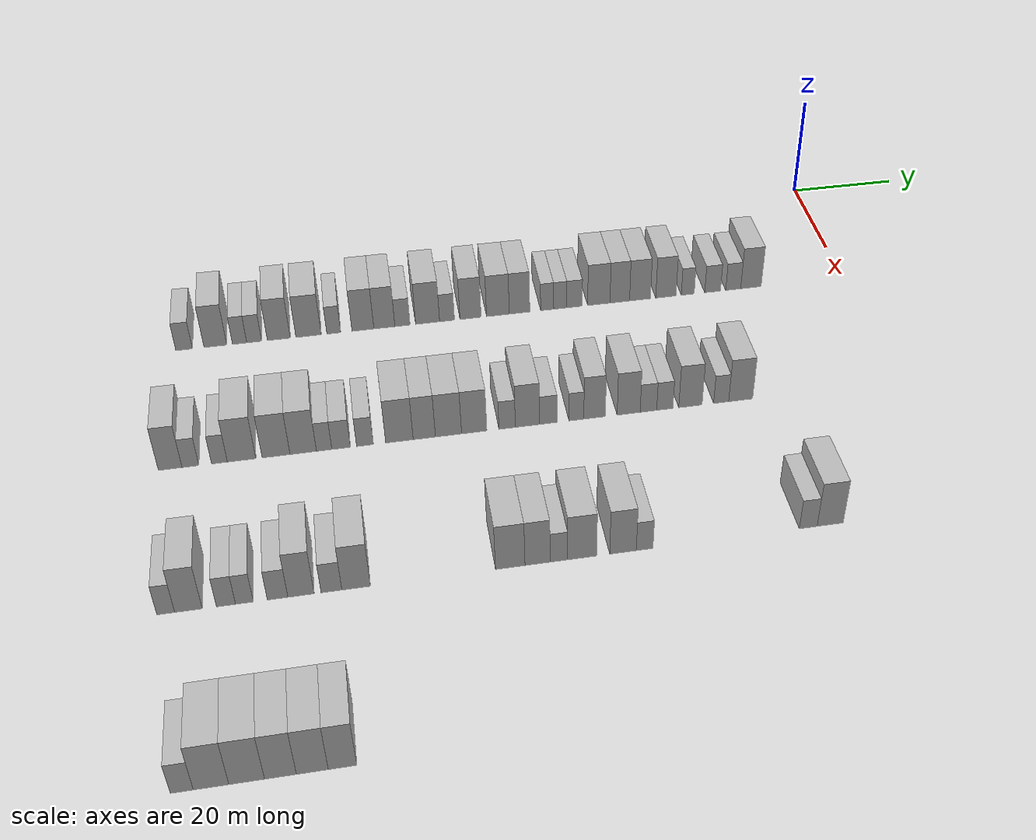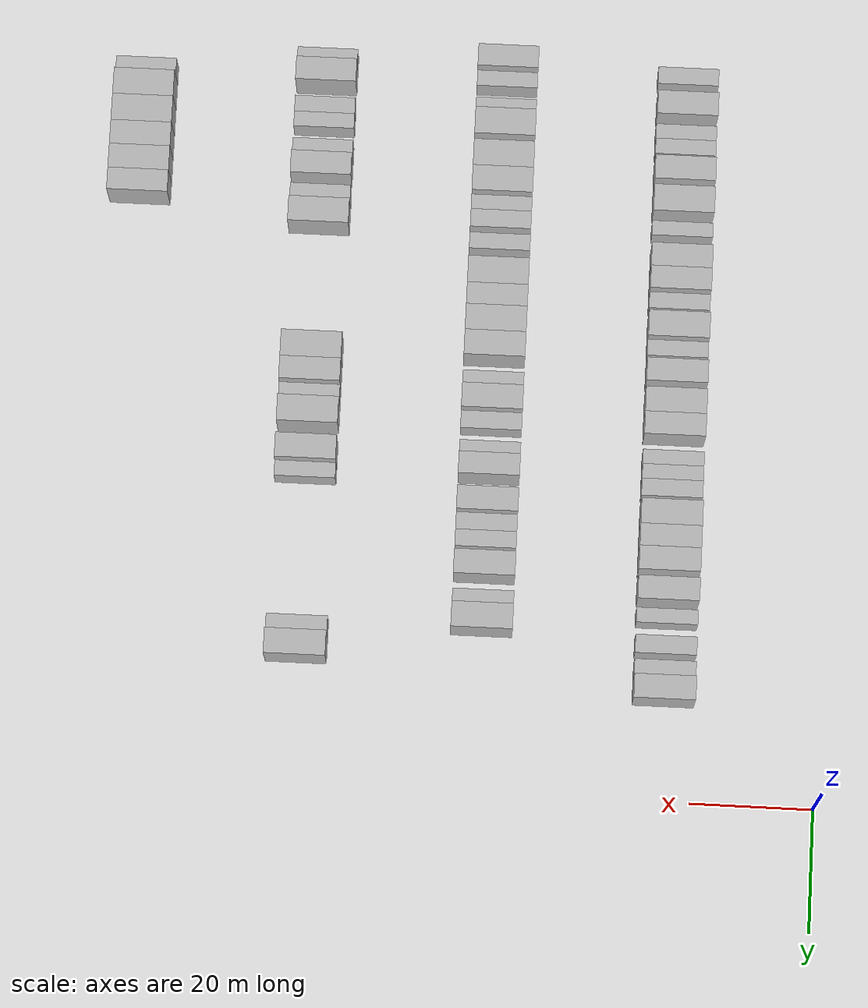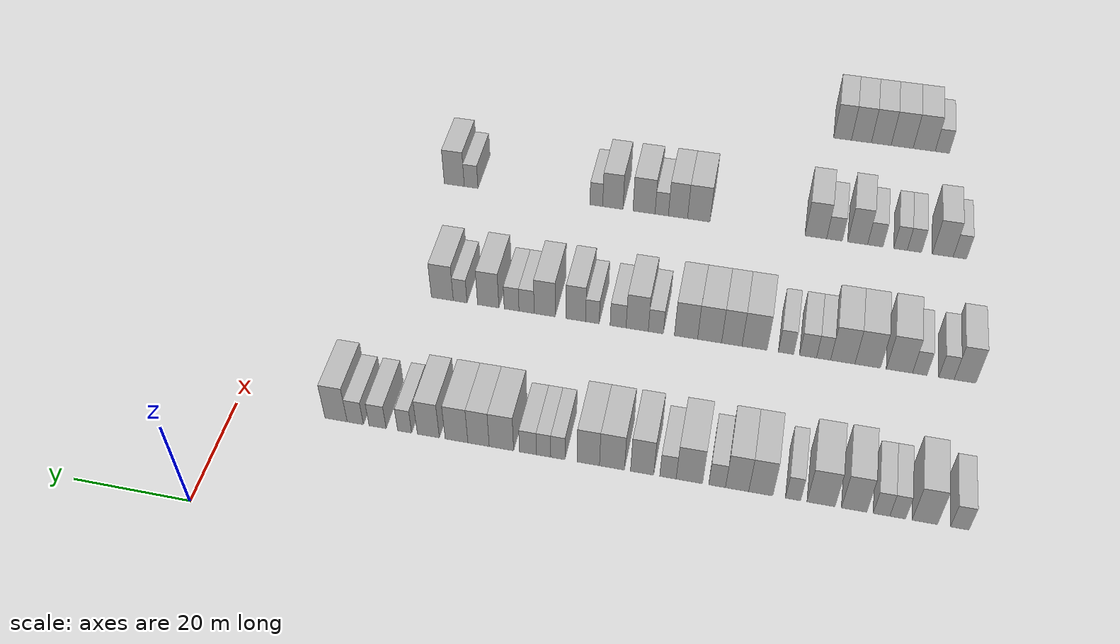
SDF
<sdf version="1.6">
 <world name="default">
  <model name="building_81">
   <static>1</static>
   <pose>25.0000 -120.6225 0 0.000000 0.000000 0.000000</pose>
   <link name="link">
    <pose>0 0 3.00 0 0 0</pose>
    <collision name="collision"><geometry><box><size>10.0000 2.8562 6.0000</size></box></geometry></collision>
    <visual name="visual">
     <cast_shadows>0</cast_shadows>
     <geometry><box><size>10.0000 2.8562 6.0000</size></box></geometry>
     <material>
      <script>
       <uri>model://HANNAS_wall/materials/scripts</uri>
       <uri>model://HANNAS_wall/materials/textures</uri>
       <name>vrc/HANNAS_wall</name>
      </script>
     </material>
    </visual>
   </link>
  </model>
  <model name="building_82">
   <static>1</static>
   <pose>25.0000 -115.2270 0 0.000000 0.000000 0.000000</pose>
   <link name="link">
    <pose>0 0 4.50 0 0 0</pose>
    <collision name="collision"><geometry><box><size>10.0000 3.9348 9.0000</size></box></geometry></collision>
    <visual name="visual">
     <cast_shadows>0</cast_shadows>
     <geometry><box><size>10.0000 3.9348 9.0000</size></box></geometry>
     <material>
      <script>
       <uri>model://HANNAS_wall/materials/scripts</uri>
       <uri>model://HANNAS_wall/materials/textures</uri>
       <name>vrc/HANNAS_wall</name>
      </script>
     </material>
    </visual>
   </link>
  </model>
  <model name="building_83">
   <static>1</static>
   <pose>25.0000 -111.0257 0 0.000000 0.000000 0.000000</pose>
   <link name="link">
    <pose>0 0 3.00 0 0 0</pose>
    <collision name="collision"><geometry><box><size>10.0000 2.4680 6.0000</size></box></geometry></collision>
    <visual name="visual">
     <cast_shadows>0</cast_shadows>
     <geometry><box><size>10.0000 2.4680 6.0000</size></box></geometry>
     <material>
      <script>
       <uri>model://HANNAS_wall/materials/scripts</uri>
       <uri>model://HANNAS_wall/materials/textures</uri>
       <name>vrc/HANNAS_wall</name>
      </script>
     </material>
    </visual>
   </link>
  </model>
  <model name="building_84">
   <static>1</static>
   <pose>25.0000 -108.4898 0 0.000000 0.000000 0.000000</pose>
   <link name="link">
    <pose>0 0 3.00 0 0 0</pose>
    <collision name="collision"><geometry><box><size>10.0000 2.6037 6.0000</size></box></geometry></collision>
    <visual name="visual">
     <cast_shadows>0</cast_shadows>
     <geometry><box><size>10.0000 2.6037 6.0000</size></box></geometry>
     <material>
      <script>
       <uri>model://HANNAS_wall/materials/scripts</uri>
       <uri>model://HANNAS_wall/materials/textures</uri>
       <name>vrc/HANNAS_wall</name>
      </script>
     </material>
    </visual>
   </link>
  </model>
  <model name="building_85">
   <static>1</static>
   <pose>25.0000 -104.1916 0 0.000000 0.000000 0.000000</pose>
   <link name="link">
    <pose>0 0 4.50 0 0 0</pose>
    <collision name="collision"><geometry><box><size>10.0000 3.9929 9.0000</size></box></geometry></collision>
    <visual name="visual">
     <cast_shadows>0</cast_shadows>
     <geometry><box><size>10.0000 3.9929 9.0000</size></box></geometry>
     <material>
      <script>
       <uri>model://HANNAS_wall/materials/scripts</uri>
       <uri>model://HANNAS_wall/materials/textures</uri>
       <name>vrc/HANNAS_wall</name>
      </script>
     </material>
    </visual>
   </link>
  </model>
  <model name="building_86">
   <static>1</static>
   <pose>25.0000 -98.9674 0 0.000000 0.000000 0.000000</pose>
   <link name="link">
    <pose>0 0 4.50 0 0 0</pose>
    <collision name="collision"><geometry><box><size>10.0000 4.4555 9.0000</size></box></geometry></collision>
    <visual name="visual">
     <cast_shadows>0</cast_shadows>
     <geometry><box><size>10.0000 4.4555 9.0000</size></box></geometry>
     <material>
      <script>
       <uri>model://HANNAS_wall/materials/scripts</uri>
       <uri>model://HANNAS_wall/materials/textures</uri>
       <name>vrc/HANNAS_wall</name>
      </script>
     </material>
    </visual>
   </link>
  </model>
  <model name="building_87">
   <static>1</static>
   <pose>25.0000 -94.5188 0 0.000000 0.000000 0.000000</pose>
   <link name="link">
    <pose>0 0 3.00 0 0 0</pose>
    <collision name="collision"><geometry><box><size>10.0000 2.4417 6.0000</size></box></geometry></collision>
    <visual name="visual">
     <cast_shadows>0</cast_shadows>
     <geometry><box><size>10.0000 2.4417 6.0000</size></box></geometry>
     <material>
      <script>
       <uri>model://HANNAS_wall/materials/scripts</uri>
       <uri>model://HANNAS_wall/materials/textures</uri>
       <name>vrc/HANNAS_wall</name>
      </script>
     </material>
    </visual>
   </link>
  </model>
  <model name="building_88">
   <static>1</static>
   <pose>25.0000 -89.3553 0 0.000000 0.000000 0.000000</pose>
   <link name="link">
    <pose>0 0 4.50 0 0 0</pose>
    <collision name="collision"><geometry><box><size>10.0000 3.8852 9.0000</size></box></geometry></collision>
    <visual name="visual">
     <cast_shadows>0</cast_shadows>
     <geometry><box><size>10.0000 3.8852 9.0000</size></box></geometry>
     <material>
      <script>
       <uri>model://HANNAS_wall/materials/scripts</uri>
       <uri>model://HANNAS_wall/materials/textures</uri>
       <name>vrc/HANNAS_wall</name>
      </script>
     </material>
    </visual>
   </link>
  </model>
  <model name="building_89">
   <static>1</static>
   <pose>25.0000 -85.5329 0 0.000000 0.000000 0.000000</pose>
   <link name="link">
    <pose>0 0 4.50 0 0 0</pose>
    <collision name="collision"><geometry><box><size>10.0000 3.7597 9.0000</size></box></geometry></collision>
    <visual name="visual">
     <cast_shadows>0</cast_shadows>
     <geometry><box><size>10.0000 3.7597 9.0000</size></box></geometry>
     <material>
      <script>
       <uri>model://HANNAS_wall/materials/scripts</uri>
       <uri>model://HANNAS_wall/materials/textures</uri>
       <name>vrc/HANNAS_wall</name>
      </script>
     </material>
    </visual>
   </link>
  </model>
  <model name="building_90">
   <static>1</static>
   <pose>25.0000 -82.2962 0 0.000000 0.000000 0.000000</pose>
   <link name="link">
    <pose>0 0 3.00 0 0 0</pose>
    <collision name="collision"><geometry><box><size>10.0000 2.7136 6.0000</size></box></geometry></collision>
    <visual name="visual">
     <cast_shadows>0</cast_shadows>
     <geometry><box><size>10.0000 2.7136 6.0000</size></box></geometry>
     <material>
      <script>
       <uri>model://HANNAS_wall/materials/scripts</uri>
       <uri>model://HANNAS_wall/materials/textures</uri>
       <name>vrc/HANNAS_wall</name>
      </script>
     </material>
    </visual>
   </link>
  </model>
  <model name="building_91">
   <static>1</static>
   <pose>25.0000 -77.7819 0 0.000000 0.000000 0.000000</pose>
   <link name="link">
    <pose>0 0 4.50 0 0 0</pose>
    <collision name="collision"><geometry><box><size>10.0000 4.3150 9.0000</size></box></geometry></collision>
    <visual name="visual">
     <cast_shadows>0</cast_shadows>
     <geometry><box><size>10.0000 4.3150 9.0000</size></box></geometry>
     <material>
      <script>
       <uri>model://HANNAS_wall/materials/scripts</uri>
       <uri>model://HANNAS_wall/materials/textures</uri>
       <name>vrc/HANNAS_wall</name>
      </script>
     </material>
    </visual>
   </link>
  </model>
  <model name="building_92">
   <static>1</static>
   <pose>25.0000 -74.2828 0 0.000000 0.000000 0.000000</pose>
   <link name="link">
    <pose>0 0 3.00 0 0 0</pose>
    <collision name="collision"><geometry><box><size>10.0000 2.6831 6.0000</size></box></geometry></collision>
    <visual name="visual">
     <cast_shadows>0</cast_shadows>
     <geometry><box><size>10.0000 2.6831 6.0000</size></box></geometry>
     <material>
      <script>
       <uri>model://HANNAS_wall/materials/scripts</uri>
       <uri>model://HANNAS_wall/materials/textures</uri>
       <name>vrc/HANNAS_wall</name>
      </script>
     </material>
    </visual>
   </link>
  </model>
  <model name="building_93">
   <static>1</static>
   <pose>25.0000 -70.0282 0 0.000000 0.000000 0.000000</pose>
   <link name="link">
    <pose>0 0 4.50 0 0 0</pose>
    <collision name="collision"><geometry><box><size>10.0000 3.8262 9.0000</size></box></geometry></collision>
    <visual name="visual">
     <cast_shadows>0</cast_shadows>
     <geometry><box><size>10.0000 3.8262 9.0000</size></box></geometry>
     <material>
      <script>
       <uri>model://HANNAS_wall/materials/scripts</uri>
       <uri>model://HANNAS_wall/materials/textures</uri>
       <name>vrc/HANNAS_wall</name>
      </script>
     </material>
    </visual>
   </link>
  </model>
  <model name="building_94">
   <static>1</static>
   <pose>25.0000 -65.0413 0 0.000000 0.000000 0.000000</pose>
   <link name="link">
    <pose>0 0 4.50 0 0 0</pose>
    <collision name="collision"><geometry><box><size>10.0000 4.1476 9.0000</size></box></geometry></collision>
    <visual name="visual">
     <cast_shadows>0</cast_shadows>
     <geometry><box><size>10.0000 4.1476 9.0000</size></box></geometry>
     <material>
      <script>
       <uri>model://HANNAS_wall/materials/scripts</uri>
       <uri>model://HANNAS_wall/materials/textures</uri>
       <name>vrc/HANNAS_wall</name>
      </script>
     </material>
    </visual>
   </link>
  </model>
  <model name="building_95">
   <static>1</static>
   <pose>25.0000 -61.0917 0 0.000000 0.000000 0.000000</pose>
   <link name="link">
    <pose>0 0 4.50 0 0 0</pose>
    <collision name="collision"><geometry><box><size>10.0000 3.7517 9.0000</size></box></geometry></collision>
    <visual name="visual">
     <cast_shadows>0</cast_shadows>
     <geometry><box><size>10.0000 3.7517 9.0000</size></box></geometry>
     <material>
      <script>
       <uri>model://HANNAS_wall/materials/scripts</uri>
       <uri>model://HANNAS_wall/materials/textures</uri>
       <name>vrc/HANNAS_wall</name>
      </script>
     </material>
    </visual>
   </link>
  </model>
  <model name="building_96">
   <static>1</static>
   <pose>25.0000 -56.0132 0 0.000000 0.000000 0.000000</pose>
   <link name="link">
    <pose>0 0 3.00 0 0 0</pose>
    <collision name="collision"><geometry><box><size>10.0000 2.4053 6.0000</size></box></geometry></collision>
    <visual name="visual">
     <cast_shadows>0</cast_shadows>
     <geometry><box><size>10.0000 2.4053 6.0000</size></box></geometry>
     <material>
      <script>
       <uri>model://HANNAS_wall/materials/scripts</uri>
       <uri>model://HANNAS_wall/materials/textures</uri>
       <name>vrc/HANNAS_wall</name>
      </script>
     </material>
    </visual>
   </link>
  </model>
  <model name="building_97">
   <static>1</static>
   <pose>25.0000 -53.5967 0 0.000000 0.000000 0.000000</pose>
   <link name="link">
    <pose>0 0 3.00 0 0 0</pose>
    <collision name="collision"><geometry><box><size>10.0000 2.4277 6.0000</size></box></geometry></collision>
    <visual name="visual">
     <cast_shadows>0</cast_shadows>
     <geometry><box><size>10.0000 2.4277 6.0000</size></box></geometry>
     <material>
      <script>
       <uri>model://HANNAS_wall/materials/scripts</uri>
       <uri>model://HANNAS_wall/materials/textures</uri>
       <name>vrc/HANNAS_wall</name>
      </script>
     </material>
    </visual>
   </link>
  </model>
  <model name="building_98">
   <static>1</static>
   <pose>25.0000 -50.9577 0 0.000000 0.000000 0.000000</pose>
   <link name="link">
    <pose>0 0 3.00 0 0 0</pose>
    <collision name="collision"><geometry><box><size>10.0000 2.8503 6.0000</size></box></geometry></collision>
    <visual name="visual">
     <cast_shadows>0</cast_shadows>
     <geometry><box><size>10.0000 2.8503 6.0000</size></box></geometry>
     <material>
      <script>
       <uri>model://HANNAS_wall/materials/scripts</uri>
       <uri>model://HANNAS_wall/materials/textures</uri>
       <name>vrc/HANNAS_wall</name>
      </script>
     </material>
    </visual>
   </link>
  </model>
  <model name="building_99">
   <static>1</static>
   <pose>25.0000 -46.4543 0 0.000000 0.000000 0.000000</pose>
   <link name="link">
    <pose>0 0 4.50 0 0 0</pose>
    <collision name="collision"><geometry><box><size>10.0000 4.1565 9.0000</size></box></geometry></collision>
    <visual name="visual">
     <cast_shadows>0</cast_shadows>
     <geometry><box><size>10.0000 4.1565 9.0000</size></box></geometry>
     <material>
      <script>
       <uri>model://HANNAS_wall/materials/scripts</uri>
       <uri>model://HANNAS_wall/materials/textures</uri>
       <name>vrc/HANNAS_wall</name>
      </script>
     </material>
    </visual>
   </link>
  </model>
  <model name="building_100">
   <static>1</static>
   <pose>25.0000 -42.5480 0 0.000000 0.000000 0.000000</pose>
   <link name="link">
    <pose>0 0 4.50 0 0 0</pose>
    <collision name="collision"><geometry><box><size>10.0000 3.6561 9.0000</size></box></geometry></collision>
    <visual name="visual">
     <cast_shadows>0</cast_shadows>
     <geometry><box><size>10.0000 3.6561 9.0000</size></box></geometry>
     <material>
      <script>
       <uri>model://HANNAS_wall/materials/scripts</uri>
       <uri>model://HANNAS_wall/materials/textures</uri>
       <name>vrc/HANNAS_wall</name>
      </script>
     </material>
    </visual>
   </link>
  </model>
  <model name="building_101">
   <static>1</static>
   <pose>25.0000 -38.7689 0 0.000000 0.000000 0.000000</pose>
   <link name="link">
    <pose>0 0 4.50 0 0 0</pose>
    <collision name="collision"><geometry><box><size>10.0000 3.9019 9.0000</size></box></geometry></collision>
    <visual name="visual">
     <cast_shadows>0</cast_shadows>
     <geometry><box><size>10.0000 3.9019 9.0000</size></box></geometry>
     <material>
      <script>
       <uri>model://HANNAS_wall/materials/scripts</uri>
       <uri>model://HANNAS_wall/materials/textures</uri>
       <name>vrc/HANNAS_wall</name>
      </script>
     </material>
    </visual>
   </link>
  </model>
  <model name="building_102">
   <static>1</static>
   <pose>25.0000 -33.9112 0 0.000000 0.000000 0.000000</pose>
   <link name="link">
    <pose>0 0 4.50 0 0 0</pose>
    <collision name="collision"><geometry><box><size>10.0000 3.8135 9.0000</size></box></geometry></collision>
    <visual name="visual">
     <cast_shadows>0</cast_shadows>
     <geometry><box><size>10.0000 3.8135 9.0000</size></box></geometry>
     <material>
      <script>
       <uri>model://HANNAS_wall/materials/scripts</uri>
       <uri>model://HANNAS_wall/materials/textures</uri>
       <name>vrc/HANNAS_wall</name>
      </script>
     </material>
    </visual>
   </link>
  </model>
  <model name="building_103">
   <static>1</static>
   <pose>25.0000 -29.7815 0 0.000000 0.000000 0.000000</pose>
   <link name="link">
    <pose>0 0 3.00 0 0 0</pose>
    <collision name="collision"><geometry><box><size>10.0000 2.4460 6.0000</size></box></geometry></collision>
    <visual name="visual">
     <cast_shadows>0</cast_shadows>
     <geometry><box><size>10.0000 2.4460 6.0000</size></box></geometry>
     <material>
      <script>
       <uri>model://HANNAS_wall/materials/scripts</uri>
       <uri>model://HANNAS_wall/materials/textures</uri>
       <name>vrc/HANNAS_wall</name>
      </script>
     </material>
    </visual>
   </link>
  </model>
  <model name="building_104">
   <static>1</static>
   <pose>25.0000 -25.0604 0 0.000000 0.000000 0.000000</pose>
   <link name="link">
    <pose>0 0 3.00 0 0 0</pose>
    <collision name="collision"><geometry><box><size>10.0000 2.9961 6.0000</size></box></geometry></collision>
    <visual name="visual">
     <cast_shadows>0</cast_shadows>
     <geometry><box><size>10.0000 2.9961 6.0000</size></box></geometry>
     <material>
      <script>
       <uri>model://HANNAS_wall/materials/scripts</uri>
       <uri>model://HANNAS_wall/materials/textures</uri>
       <name>vrc/HANNAS_wall</name>
      </script>
     </material>
    </visual>
   </link>
  </model>
  <model name="building_105">
   <static>1</static>
   <pose>25.0000 -21.1335 0 0.000000 0.000000 0.000000</pose>
   <link name="link">
    <pose>0 0 3.00 0 0 0</pose>
    <collision name="collision"><geometry><box><size>10.0000 2.8576 6.0000</size></box></geometry></collision>
    <visual name="visual">
     <cast_shadows>0</cast_shadows>
     <geometry><box><size>10.0000 2.8576 6.0000</size></box></geometry>
     <material>
      <script>
       <uri>model://HANNAS_wall/materials/scripts</uri>
       <uri>model://HANNAS_wall/materials/textures</uri>
       <name>vrc/HANNAS_wall</name>
      </script>
     </material>
    </visual>
   </link>
  </model>
  <model name="building_106">
   <static>1</static>
   <pose>25.0000 -17.7443 0 0.000000 0.000000 0.000000</pose>
   <link name="link">
    <pose>0 0 4.50 0 0 0</pose>
    <collision name="collision"><geometry><box><size>10.0000 3.9209 9.0000</size></box></geometry></collision>
    <visual name="visual">
     <cast_shadows>0</cast_shadows>
     <geometry><box><size>10.0000 3.9209 9.0000</size></box></geometry>
     <material>
      <script>
       <uri>model://HANNAS_wall/materials/scripts</uri>
       <uri>model://HANNAS_wall/materials/textures</uri>
       <name>vrc/HANNAS_wall</name>
      </script>
     </material>
    </visual>
   </link>
  </model>
  <model name="building_315">
   <static>1</static>
   <pose>55.0000 -121.9016 0 0.000000 0.000000 0.000000</pose>
   <link name="link">
    <pose>0 0 4.50 0 0 0</pose>
    <collision name="collision"><geometry><box><size>10.0000 3.6936 9.0000</size></box></geometry></collision>
    <visual name="visual">
     <cast_shadows>0</cast_shadows>
     <geometry><box><size>10.0000 3.6936 9.0000</size></box></geometry>
     <material>
      <script>
       <uri>model://HANNAS_wall/materials/scripts</uri>
       <uri>model://HANNAS_wall/materials/textures</uri>
       <name>vrc/HANNAS_wall</name>
      </script>
     </material>
    </visual>
   </link>
  </model>
  <model name="building_316">
   <static>1</static>
   <pose>55.0000 -118.7462 0 0.000000 0.000000 0.000000</pose>
   <link name="link">
    <pose>0 0 3.00 0 0 0</pose>
    <collision name="collision"><geometry><box><size>10.0000 2.6170 6.0000</size></box></geometry></collision>
    <visual name="visual">
     <cast_shadows>0</cast_shadows>
     <geometry><box><size>10.0000 2.6170 6.0000</size></box></geometry>
     <material>
      <script>
       <uri>model://HANNAS_wall/materials/scripts</uri>
       <uri>model://HANNAS_wall/materials/textures</uri>
       <name>vrc/HANNAS_wall</name>
      </script>
     </material>
    </visual>
   </link>
  </model>
  <model name="building_317">
   <static>1</static>
   <pose>55.0000 -114.1971 0 0.000000 0.000000 0.000000</pose>
   <link name="link">
    <pose>0 0 3.00 0 0 0</pose>
    <collision name="collision"><geometry><box><size>10.0000 2.4812 6.0000</size></box></geometry></collision>
    <visual name="visual">
     <cast_shadows>0</cast_shadows>
     <geometry><box><size>10.0000 2.4812 6.0000</size></box></geometry>
     <material>
      <script>
       <uri>model://HANNAS_wall/materials/scripts</uri>
       <uri>model://HANNAS_wall/materials/textures</uri>
       <name>vrc/HANNAS_wall</name>
      </script>
     </material>
    </visual>
   </link>
  </model>
  <model name="building_318">
   <static>1</static>
   <pose>55.0000 -110.7094 0 0.000000 0.000000 0.000000</pose>
   <link name="link">
    <pose>0 0 4.50 0 0 0</pose>
    <collision name="collision"><geometry><box><size>10.0000 4.4944 9.0000</size></box></geometry></collision>
    <visual name="visual">
     <cast_shadows>0</cast_shadows>
     <geometry><box><size>10.0000 4.4944 9.0000</size></box></geometry>
     <material>
      <script>
       <uri>model://HANNAS_wall/materials/scripts</uri>
       <uri>model://HANNAS_wall/materials/textures</uri>
       <name>vrc/HANNAS_wall</name>
      </script>
     </material>
    </visual>
   </link>
  </model>
  <model name="building_319">
   <static>1</static>
   <pose>55.0000 -105.2488 0 0.000000 0.000000 0.000000</pose>
   <link name="link">
    <pose>0 0 4.50 0 0 0</pose>
    <collision name="collision"><geometry><box><size>10.0000 4.4268 9.0000</size></box></geometry></collision>
    <visual name="visual">
     <cast_shadows>0</cast_shadows>
     <geometry><box><size>10.0000 4.4268 9.0000</size></box></geometry>
     <material>
      <script>
       <uri>model://HANNAS_wall/materials/scripts</uri>
       <uri>model://HANNAS_wall/materials/textures</uri>
       <name>vrc/HANNAS_wall</name>
      </script>
     </material>
    </visual>
   </link>
  </model>
  <model name="building_320">
   <static>1</static>
   <pose>55.0000 -100.9180 0 0.000000 0.000000 0.000000</pose>
   <link name="link">
    <pose>0 0 4.50 0 0 0</pose>
    <collision name="collision"><geometry><box><size>10.0000 4.2349 9.0000</size></box></geometry></collision>
    <visual name="visual">
     <cast_shadows>0</cast_shadows>
     <geometry><box><size>10.0000 4.2349 9.0000</size></box></geometry>
     <material>
      <script>
       <uri>model://HANNAS_wall/materials/scripts</uri>
       <uri>model://HANNAS_wall/materials/textures</uri>
       <name>vrc/HANNAS_wall</name>
      </script>
     </material>
    </visual>
   </link>
  </model>
  <model name="building_321">
   <static>1</static>
   <pose>55.0000 -97.5684 0 0.000000 0.000000 0.000000</pose>
   <link name="link">
    <pose>0 0 3.00 0 0 0</pose>
    <collision name="collision"><geometry><box><size>10.0000 2.4643 6.0000</size></box></geometry></collision>
    <visual name="visual">
     <cast_shadows>0</cast_shadows>
     <geometry><box><size>10.0000 2.4643 6.0000</size></box></geometry>
     <material>
      <script>
       <uri>model://HANNAS_wall/materials/scripts</uri>
       <uri>model://HANNAS_wall/materials/textures</uri>
       <name>vrc/HANNAS_wall</name>
      </script>
     </material>
    </visual>
   </link>
  </model>
  <model name="building_322">
   <static>1</static>
   <pose>55.0000 -94.8435 0 0.000000 0.000000 0.000000</pose>
   <link name="link">
    <pose>0 0 3.00 0 0 0</pose>
    <collision name="collision"><geometry><box><size>10.0000 2.9855 6.0000</size></box></geometry></collision>
    <visual name="visual">
     <cast_shadows>0</cast_shadows>
     <geometry><box><size>10.0000 2.9855 6.0000</size></box></geometry>
     <material>
      <script>
       <uri>model://HANNAS_wall/materials/scripts</uri>
       <uri>model://HANNAS_wall/materials/textures</uri>
       <name>vrc/HANNAS_wall</name>
      </script>
     </material>
    </visual>
   </link>
  </model>
  <model name="building_323">
   <static>1</static>
   <pose>55.0000 -90.9970 0 0.000000 0.000000 0.000000</pose>
   <link name="link">
    <pose>0 0 3.00 0 0 0</pose>
    <collision name="collision"><geometry><box><size>10.0000 2.7075 6.0000</size></box></geometry></collision>
    <visual name="visual">
     <cast_shadows>0</cast_shadows>
     <geometry><box><size>10.0000 2.7075 6.0000</size></box></geometry>
     <material>
      <script>
       <uri>model://HANNAS_wall/materials/scripts</uri>
       <uri>model://HANNAS_wall/materials/textures</uri>
       <name>vrc/HANNAS_wall</name>
      </script>
     </material>
    </visual>
   </link>
  </model>
  <model name="building_324">
   <static>1</static>
   <pose>55.0000 -85.4100 0 0.000000 0.000000 0.000000</pose>
   <link name="link">
    <pose>0 0 4.50 0 0 0</pose>
    <collision name="collision"><geometry><box><size>10.0000 4.4665 9.0000</size></box></geometry></collision>
    <visual name="visual">
     <cast_shadows>0</cast_shadows>
     <geometry><box><size>10.0000 4.4665 9.0000</size></box></geometry>
     <material>
      <script>
       <uri>model://HANNAS_wall/materials/scripts</uri>
       <uri>model://HANNAS_wall/materials/textures</uri>
       <name>vrc/HANNAS_wall</name>
      </script>
     </material>
    </visual>
   </link>
  </model>
  <model name="building_325">
   <static>1</static>
   <pose>55.0000 -81.3624 0 0.000000 0.000000 0.000000</pose>
   <link name="link">
    <pose>0 0 4.50 0 0 0</pose>
    <collision name="collision"><geometry><box><size>10.0000 3.6288 9.0000</size></box></geometry></collision>
    <visual name="visual">
     <cast_shadows>0</cast_shadows>
     <geometry><box><size>10.0000 3.6288 9.0000</size></box></geometry>
     <material>
      <script>
       <uri>model://HANNAS_wall/materials/scripts</uri>
       <uri>model://HANNAS_wall/materials/textures</uri>
       <name>vrc/HANNAS_wall</name>
      </script>
     </material>
    </visual>
   </link>
  </model>
  <model name="building_326">
   <static>1</static>
   <pose>55.0000 -77.3969 0 0.000000 0.000000 0.000000</pose>
   <link name="link">
    <pose>0 0 4.50 0 0 0</pose>
    <collision name="collision"><geometry><box><size>10.0000 4.3022 9.0000</size></box></geometry></collision>
    <visual name="visual">
     <cast_shadows>0</cast_shadows>
     <geometry><box><size>10.0000 4.3022 9.0000</size></box></geometry>
     <material>
      <script>
       <uri>model://HANNAS_wall/materials/scripts</uri>
       <uri>model://HANNAS_wall/materials/textures</uri>
       <name>vrc/HANNAS_wall</name>
      </script>
     </material>
    </visual>
   </link>
  </model>
  <model name="building_327">
   <static>1</static>
   <pose>55.0000 -73.1609 0 0.000000 0.000000 0.000000</pose>
   <link name="link">
    <pose>0 0 4.50 0 0 0</pose>
    <collision name="collision"><geometry><box><size>10.0000 4.1697 9.0000</size></box></geometry></collision>
    <visual name="visual">
     <cast_shadows>0</cast_shadows>
     <geometry><box><size>10.0000 4.1697 9.0000</size></box></geometry>
     <material>
      <script>
       <uri>model://HANNAS_wall/materials/scripts</uri>
       <uri>model://HANNAS_wall/materials/textures</uri>
       <name>vrc/HANNAS_wall</name>
      </script>
     </material>
    </visual>
   </link>
  </model>
  <model name="building_328">
   <static>1</static>
   <pose>55.0000 -67.7108 0 0.000000 0.000000 0.000000</pose>
   <link name="link">
    <pose>0 0 3.00 0 0 0</pose>
    <collision name="collision"><geometry><box><size>10.0000 2.7305 6.0000</size></box></geometry></collision>
    <visual name="visual">
     <cast_shadows>0</cast_shadows>
     <geometry><box><size>10.0000 2.7305 6.0000</size></box></geometry>
     <material>
      <script>
       <uri>model://HANNAS_wall/materials/scripts</uri>
       <uri>model://HANNAS_wall/materials/textures</uri>
       <name>vrc/HANNAS_wall</name>
      </script>
     </material>
    </visual>
   </link>
  </model>
  <model name="building_329">
   <static>1</static>
   <pose>55.0000 -64.3220 0 0.000000 0.000000 0.000000</pose>
   <link name="link">
    <pose>0 0 4.50 0 0 0</pose>
    <collision name="collision"><geometry><box><size>10.0000 4.0472 9.0000</size></box></geometry></collision>
    <visual name="visual">
     <cast_shadows>0</cast_shadows>
     <geometry><box><size>10.0000 4.0472 9.0000</size></box></geometry>
     <material>
      <script>
       <uri>model://HANNAS_wall/materials/scripts</uri>
       <uri>model://HANNAS_wall/materials/textures</uri>
       <name>vrc/HANNAS_wall</name>
      </script>
     </material>
    </visual>
   </link>
  </model>
  <model name="building_330">
   <static>1</static>
   <pose>55.0000 -60.8413 0 0.000000 0.000000 0.000000</pose>
   <link name="link">
    <pose>0 0 3.00 0 0 0</pose>
    <collision name="collision"><geometry><box><size>10.0000 2.9141 6.0000</size></box></geometry></collision>
    <visual name="visual">
     <cast_shadows>0</cast_shadows>
     <geometry><box><size>10.0000 2.9141 6.0000</size></box></geometry>
     <material>
      <script>
       <uri>model://HANNAS_wall/materials/scripts</uri>
       <uri>model://HANNAS_wall/materials/textures</uri>
       <name>vrc/HANNAS_wall</name>
      </script>
     </material>
    </visual>
   </link>
  </model>
  <model name="building_331">
   <static>1</static>
   <pose>55.0000 -56.1354 0 0.000000 0.000000 0.000000</pose>
   <link name="link">
    <pose>0 0 3.00 0 0 0</pose>
    <collision name="collision"><geometry><box><size>10.0000 2.4977 6.0000</size></box></geometry></collision>
    <visual name="visual">
     <cast_shadows>0</cast_shadows>
     <geometry><box><size>10.0000 2.4977 6.0000</size></box></geometry>
     <material>
      <script>
       <uri>model://HANNAS_wall/materials/scripts</uri>
       <uri>model://HANNAS_wall/materials/textures</uri>
       <name>vrc/HANNAS_wall</name>
      </script>
     </material>
    </visual>
   </link>
  </model>
  <model name="building_332">
   <static>1</static>
   <pose>55.0000 -53.0713 0 0.000000 0.000000 0.000000</pose>
   <link name="link">
    <pose>0 0 4.50 0 0 0</pose>
    <collision name="collision"><geometry><box><size>10.0000 3.6305 9.0000</size></box></geometry></collision>
    <visual name="visual">
     <cast_shadows>0</cast_shadows>
     <geometry><box><size>10.0000 3.6305 9.0000</size></box></geometry>
     <material>
      <script>
       <uri>model://HANNAS_wall/materials/scripts</uri>
       <uri>model://HANNAS_wall/materials/textures</uri>
       <name>vrc/HANNAS_wall</name>
      </script>
     </material>
    </visual>
   </link>
  </model>
  <model name="building_333">
   <static>1</static>
   <pose>55.0000 -47.3038 0 0.000000 0.000000 0.000000</pose>
   <link name="link">
    <pose>0 0 4.50 0 0 0</pose>
    <collision name="collision"><geometry><box><size>10.0000 3.9044 9.0000</size></box></geometry></collision>
    <visual name="visual">
     <cast_shadows>0</cast_shadows>
     <geometry><box><size>10.0000 3.9044 9.0000</size></box></geometry>
     <material>
      <script>
       <uri>model://HANNAS_wall/materials/scripts</uri>
       <uri>model://HANNAS_wall/materials/textures</uri>
       <name>vrc/HANNAS_wall</name>
      </script>
     </material>
    </visual>
   </link>
  </model>
  <model name="building_334">
   <static>1</static>
   <pose>55.0000 -43.9379 0 0.000000 0.000000 0.000000</pose>
   <link name="link">
    <pose>0 0 3.00 0 0 0</pose>
    <collision name="collision"><geometry><box><size>10.0000 2.8275 6.0000</size></box></geometry></collision>
    <visual name="visual">
     <cast_shadows>0</cast_shadows>
     <geometry><box><size>10.0000 2.8275 6.0000</size></box></geometry>
     <material>
      <script>
       <uri>model://HANNAS_wall/materials/scripts</uri>
       <uri>model://HANNAS_wall/materials/textures</uri>
       <name>vrc/HANNAS_wall</name>
      </script>
     </material>
    </visual>
   </link>
  </model>
  <model name="building_335">
   <static>1</static>
   <pose>55.0000 -41.1369 0 0.000000 0.000000 0.000000</pose>
   <link name="link">
    <pose>0 0 3.00 0 0 0</pose>
    <collision name="collision"><geometry><box><size>10.0000 2.7745 6.0000</size></box></geometry></collision>
    <visual name="visual">
     <cast_shadows>0</cast_shadows>
     <geometry><box><size>10.0000 2.7745 6.0000</size></box></geometry>
     <material>
      <script>
       <uri>model://HANNAS_wall/materials/scripts</uri>
       <uri>model://HANNAS_wall/materials/textures</uri>
       <name>vrc/HANNAS_wall</name>
      </script>
     </material>
    </visual>
   </link>
  </model>
  <model name="building_336">
   <static>1</static>
   <pose>55.0000 -36.7428 0 0.000000 0.000000 0.000000</pose>
   <link name="link">
    <pose>0 0 4.50 0 0 0</pose>
    <collision name="collision"><geometry><box><size>10.0000 4.0137 9.0000</size></box></geometry></collision>
    <visual name="visual">
     <cast_shadows>0</cast_shadows>
     <geometry><box><size>10.0000 4.0137 9.0000</size></box></geometry>
     <material>
      <script>
       <uri>model://HANNAS_wall/materials/scripts</uri>
       <uri>model://HANNAS_wall/materials/textures</uri>
       <name>vrc/HANNAS_wall</name>
      </script>
     </material>
    </visual>
   </link>
  </model>
  <model name="building_337">
   <static>1</static>
   <pose>55.0000 -31.4369 0 0.000000 0.000000 0.000000</pose>
   <link name="link">
    <pose>0 0 3.00 0 0 0</pose>
    <collision name="collision"><geometry><box><size>10.0000 2.5980 6.0000</size></box></geometry></collision>
    <visual name="visual">
     <cast_shadows>0</cast_shadows>
     <geometry><box><size>10.0000 2.5980 6.0000</size></box></geometry>
     <material>
      <script>
       <uri>model://HANNAS_wall/materials/scripts</uri>
       <uri>model://HANNAS_wall/materials/textures</uri>
       <name>vrc/HANNAS_wall</name>
      </script>
     </material>
    </visual>
   </link>
  </model>
  <model name="building_338">
   <static>1</static>
   <pose>55.0000 -28.0555 0 0.000000 0.000000 0.000000</pose>
   <link name="link">
    <pose>0 0 4.50 0 0 0</pose>
    <collision name="collision"><geometry><box><size>10.0000 4.1647 9.0000</size></box></geometry></collision>
    <visual name="visual">
     <cast_shadows>0</cast_shadows>
     <geometry><box><size>10.0000 4.1647 9.0000</size></box></geometry>
     <material>
      <script>
       <uri>model://HANNAS_wall/materials/scripts</uri>
       <uri>model://HANNAS_wall/materials/textures</uri>
       <name>vrc/HANNAS_wall</name>
      </script>
     </material>
    </visual>
   </link>
  </model>
  <model name="building_531">
   <static>1</static>
   <pose>85.0000 -121.4227 0 0.000000 0.000000 0.000000</pose>
   <link name="link">
    <pose>0 0 3.00 0 0 0</pose>
    <collision name="collision"><geometry><box><size>10.0000 2.4945 6.0000</size></box></geometry></collision>
    <visual name="visual">
     <cast_shadows>0</cast_shadows>
     <geometry><box><size>10.0000 2.4945 6.0000</size></box></geometry>
     <material>
      <script>
       <uri>model://HANNAS_wall/materials/scripts</uri>
       <uri>model://HANNAS_wall/materials/textures</uri>
       <name>vrc/HANNAS_wall</name>
      </script>
     </material>
    </visual>
   </link>
  </model>
  <model name="building_532">
   <static>1</static>
   <pose>85.0000 -118.2401 0 0.000000 0.000000 0.000000</pose>
   <link name="link">
    <pose>0 0 4.50 0 0 0</pose>
    <collision name="collision"><geometry><box><size>10.0000 3.8708 9.0000</size></box></geometry></collision>
    <visual name="visual">
     <cast_shadows>0</cast_shadows>
     <geometry><box><size>10.0000 3.8708 9.0000</size></box></geometry>
     <material>
      <script>
       <uri>model://HANNAS_wall/materials/scripts</uri>
       <uri>model://HANNAS_wall/materials/textures</uri>
       <name>vrc/HANNAS_wall</name>
      </script>
     </material>
    </visual>
   </link>
  </model>
  <model name="building_533">
   <static>1</static>
   <pose>85.0000 -112.9524 0 0.000000 0.000000 0.000000</pose>
   <link name="link">
    <pose>0 0 3.00 0 0 0</pose>
    <collision name="collision"><geometry><box><size>10.0000 2.7045 6.0000</size></box></geometry></collision>
    <visual name="visual">
     <cast_shadows>0</cast_shadows>
     <geometry><box><size>10.0000 2.7045 6.0000</size></box></geometry>
     <material>
      <script>
       <uri>model://HANNAS_wall/materials/scripts</uri>
       <uri>model://HANNAS_wall/materials/textures</uri>
       <name>vrc/HANNAS_wall</name>
      </script>
     </material>
    </visual>
   </link>
  </model>
  <model name="building_534">
   <static>1</static>
   <pose>85.0000 -110.3337 0 0.000000 0.000000 0.000000</pose>
   <link name="link">
    <pose>0 0 3.00 0 0 0</pose>
    <collision name="collision"><geometry><box><size>10.0000 2.5329 6.0000</size></box></geometry></collision>
    <visual name="visual">
     <cast_shadows>0</cast_shadows>
     <geometry><box><size>10.0000 2.5329 6.0000</size></box></geometry>
     <material>
      <script>
       <uri>model://HANNAS_wall/materials/scripts</uri>
       <uri>model://HANNAS_wall/materials/textures</uri>
       <name>vrc/HANNAS_wall</name>
      </script>
     </material>
    </visual>
   </link>
  </model>
  <model name="building_535">
   <static>1</static>
   <pose>85.0000 -105.6057 0 0.000000 0.000000 0.000000</pose>
   <link name="link">
    <pose>0 0 3.00 0 0 0</pose>
    <collision name="collision"><geometry><box><size>10.0000 2.9230 6.0000</size></box></geometry></collision>
    <visual name="visual">
     <cast_shadows>0</cast_shadows>
     <geometry><box><size>10.0000 2.9230 6.0000</size></box></geometry>
     <material>
      <script>
       <uri>model://HANNAS_wall/materials/scripts</uri>
       <uri>model://HANNAS_wall/materials/textures</uri>
       <name>vrc/HANNAS_wall</name>
      </script>
     </material>
    </visual>
   </link>
  </model>
  <model name="building_536">
   <static>1</static>
   <pose>85.0000 -102.2515 0 0.000000 0.000000 0.000000</pose>
   <link name="link">
    <pose>0 0 4.50 0 0 0</pose>
    <collision name="collision"><geometry><box><size>10.0000 3.7853 9.0000</size></box></geometry></collision>
    <visual name="visual">
     <cast_shadows>0</cast_shadows>
     <geometry><box><size>10.0000 3.7853 9.0000</size></box></geometry>
     <material>
      <script>
       <uri>model://HANNAS_wall/materials/scripts</uri>
       <uri>model://HANNAS_wall/materials/textures</uri>
       <name>vrc/HANNAS_wall</name>
      </script>
     </material>
    </visual>
   </link>
  </model>
  <model name="building_537">
   <static>1</static>
   <pose>85.0000 -97.8636 0 0.000000 0.000000 0.000000</pose>
   <link name="link">
    <pose>0 0 3.00 0 0 0</pose>
    <collision name="collision"><geometry><box><size>10.0000 2.9905 6.0000</size></box></geometry></collision>
    <visual name="visual">
     <cast_shadows>0</cast_shadows>
     <geometry><box><size>10.0000 2.9905 6.0000</size></box></geometry>
     <material>
      <script>
       <uri>model://HANNAS_wall/materials/scripts</uri>
       <uri>model://HANNAS_wall/materials/textures</uri>
       <name>vrc/HANNAS_wall</name>
      </script>
     </material>
    </visual>
   </link>
  </model>
  <model name="building_538">
   <static>1</static>
   <pose>85.0000 -94.2931 0 0.000000 0.000000 0.000000</pose>
   <link name="link">
    <pose>0 0 4.50 0 0 0</pose>
    <collision name="collision"><geometry><box><size>10.0000 4.1505 9.0000</size></box></geometry></collision>
    <visual name="visual">
     <cast_shadows>0</cast_shadows>
     <geometry><box><size>10.0000 4.1505 9.0000</size></box></geometry>
     <material>
      <script>
       <uri>model://HANNAS_wall/materials/scripts</uri>
       <uri>model://HANNAS_wall/materials/textures</uri>
       <name>vrc/HANNAS_wall</name>
      </script>
     </material>
    </visual>
   </link>
  </model>
  <model name="building_539">
   <static>1</static>
   <pose>85.0000 -71.6022 0 0.000000 0.000000 0.000000</pose>
   <link name="link">
    <pose>0 0 4.50 0 0 0</pose>
    <collision name="collision"><geometry><box><size>10.0000 4.4105 9.0000</size></box></geometry></collision>
    <visual name="visual">
     <cast_shadows>0</cast_shadows>
     <geometry><box><size>10.0000 4.4105 9.0000</size></box></geometry>
     <material>
      <script>
       <uri>model://HANNAS_wall/materials/scripts</uri>
       <uri>model://HANNAS_wall/materials/textures</uri>
       <name>vrc/HANNAS_wall</name>
      </script>
     </material>
    </visual>
   </link>
  </model>
  <model name="building_540">
   <static>1</static>
   <pose>85.0000 -67.5080 0 0.000000 0.000000 0.000000</pose>
   <link name="link">
    <pose>0 0 4.50 0 0 0</pose>
    <collision name="collision"><geometry><box><size>10.0000 3.7780 9.0000</size></box></geometry></collision>
    <visual name="visual">
     <cast_shadows>0</cast_shadows>
     <geometry><box><size>10.0000 3.7780 9.0000</size></box></geometry>
     <material>
      <script>
       <uri>model://HANNAS_wall/materials/scripts</uri>
       <uri>model://HANNAS_wall/materials/textures</uri>
       <name>vrc/HANNAS_wall</name>
      </script>
     </material>
    </visual>
   </link>
  </model>
  <model name="building_541">
   <static>1</static>
   <pose>85.0000 -64.3007 0 0.000000 0.000000 0.000000</pose>
   <link name="link">
    <pose>0 0 3.00 0 0 0</pose>
    <collision name="collision"><geometry><box><size>10.0000 2.6366 6.0000</size></box></geometry></collision>
    <visual name="visual">
     <cast_shadows>0</cast_shadows>
     <geometry><box><size>10.0000 2.6366 6.0000</size></box></geometry>
     <material>
      <script>
       <uri>model://HANNAS_wall/materials/scripts</uri>
       <uri>model://HANNAS_wall/materials/textures</uri>
       <name>vrc/HANNAS_wall</name>
      </script>
     </material>
    </visual>
   </link>
  </model>
  <model name="building_542">
   <static>1</static>
   <pose>85.0000 -60.7894 0 0.000000 0.000000 0.000000</pose>
   <link name="link">
    <pose>0 0 4.50 0 0 0</pose>
    <collision name="collision"><geometry><box><size>10.0000 4.3859 9.0000</size></box></geometry></collision>
    <visual name="visual">
     <cast_shadows>0</cast_shadows>
     <geometry><box><size>10.0000 4.3859 9.0000</size></box></geometry>
     <material>
      <script>
       <uri>model://HANNAS_wall/materials/scripts</uri>
       <uri>model://HANNAS_wall/materials/textures</uri>
       <name>vrc/HANNAS_wall</name>
      </script>
     </material>
    </visual>
   </link>
  </model>
  <model name="building_543">
   <static>1</static>
   <pose>85.0000 -54.5729 0 0.000000 0.000000 0.000000</pose>
   <link name="link">
    <pose>0 0 4.50 0 0 0</pose>
    <collision name="collision"><geometry><box><size>10.0000 4.0472 9.0000</size></box></geometry></collision>
    <visual name="visual">
     <cast_shadows>0</cast_shadows>
     <geometry><box><size>10.0000 4.0472 9.0000</size></box></geometry>
     <material>
      <script>
       <uri>model://HANNAS_wall/materials/scripts</uri>
       <uri>model://HANNAS_wall/materials/textures</uri>
       <name>vrc/HANNAS_wall</name>
      </script>
     </material>
    </visual>
   </link>
  </model>
  <model name="building_544">
   <static>1</static>
   <pose>85.0000 -51.2716 0 0.000000 0.000000 0.000000</pose>
   <link name="link">
    <pose>0 0 3.00 0 0 0</pose>
    <collision name="collision"><geometry><box><size>10.0000 2.5553 6.0000</size></box></geometry></collision>
    <visual name="visual">
     <cast_shadows>0</cast_shadows>
     <geometry><box><size>10.0000 2.5553 6.0000</size></box></geometry>
     <material>
      <script>
       <uri>model://HANNAS_wall/materials/scripts</uri>
       <uri>model://HANNAS_wall/materials/textures</uri>
       <name>vrc/HANNAS_wall</name>
      </script>
     </material>
    </visual>
   </link>
  </model>
  <model name="building_545">
   <static>1</static>
   <pose>85.0000 -25.7591 0 0.000000 0.000000 0.000000</pose>
   <link name="link">
    <pose>0 0 3.00 0 0 0</pose>
    <collision name="collision"><geometry><box><size>10.0000 2.8232 6.0000</size></box></geometry></collision>
    <visual name="visual">
     <cast_shadows>0</cast_shadows>
     <geometry><box><size>10.0000 2.8232 6.0000</size></box></geometry>
     <material>
      <script>
       <uri>model://HANNAS_wall/materials/scripts</uri>
       <uri>model://HANNAS_wall/materials/textures</uri>
       <name>vrc/HANNAS_wall</name>
      </script>
     </material>
    </visual>
   </link>
  </model>
  <model name="building_546">
   <static>1</static>
   <pose>85.0000 -22.2759 0 0.000000 0.000000 0.000000</pose>
   <link name="link">
    <pose>0 0 4.50 0 0 0</pose>
    <collision name="collision"><geometry><box><size>10.0000 4.1433 9.0000</size></box></geometry></collision>
    <visual name="visual">
     <cast_shadows>0</cast_shadows>
     <geometry><box><size>10.0000 4.1433 9.0000</size></box></geometry>
     <material>
      <script>
       <uri>model://HANNAS_wall/materials/scripts</uri>
       <uri>model://HANNAS_wall/materials/textures</uri>
       <name>vrc/HANNAS_wall</name>
      </script>
     </material>
    </visual>
   </link>
  </model>
  <model name="building_764">
   <static>1</static>
   <pose>115.0000 -118.2609 0 0.000000 0.000000 0.000000</pose>
   <link name="link">
    <pose>0 0 3.00 0 0 0</pose>
    <collision name="collision"><geometry><box><size>10.0000 2.8736 6.0000</size></box></geometry></collision>
    <visual name="visual">
     <cast_shadows>0</cast_shadows>
     <geometry><box><size>10.0000 2.8736 6.0000</size></box></geometry>
     <material>
      <script>
       <uri>model://HANNAS_wall/materials/scripts</uri>
       <uri>model://HANNAS_wall/materials/textures</uri>
       <name>vrc/HANNAS_wall</name>
      </script>
     </material>
    </visual>
   </link>
  </model>
  <model name="building_765">
   <static>1</static>
   <pose>115.0000 -114.5938 0 0.000000 0.000000 0.000000</pose>
   <link name="link">
    <pose>0 0 4.50 0 0 0</pose>
    <collision name="collision"><geometry><box><size>10.0000 4.4607 9.0000</size></box></geometry></collision>
    <visual name="visual">
     <cast_shadows>0</cast_shadows>
     <geometry><box><size>10.0000 4.4607 9.0000</size></box></geometry>
     <material>
      <script>
       <uri>model://HANNAS_wall/materials/scripts</uri>
       <uri>model://HANNAS_wall/materials/textures</uri>
       <name>vrc/HANNAS_wall</name>
      </script>
     </material>
    </visual>
   </link>
  </model>
  <model name="building_766">
   <static>1</static>
   <pose>115.0000 -110.1164 0 0.000000 0.000000 0.000000</pose>
   <link name="link">
    <pose>0 0 4.50 0 0 0</pose>
    <collision name="collision"><geometry><box><size>10.0000 4.4941 9.0000</size></box></geometry></collision>
    <visual name="visual">
     <cast_shadows>0</cast_shadows>
     <geometry><box><size>10.0000 4.4941 9.0000</size></box></geometry>
     <material>
      <script>
       <uri>model://HANNAS_wall/materials/scripts</uri>
       <uri>model://HANNAS_wall/materials/textures</uri>
       <name>vrc/HANNAS_wall</name>
      </script>
     </material>
    </visual>
   </link>
  </model>
  <model name="building_767">
   <static>1</static>
   <pose>115.0000 -105.8430 0 0.000000 0.000000 0.000000</pose>
   <link name="link">
    <pose>0 0 4.50 0 0 0</pose>
    <collision name="collision"><geometry><box><size>10.0000 4.0525 9.0000</size></box></geometry></collision>
    <visual name="visual">
     <cast_shadows>0</cast_shadows>
     <geometry><box><size>10.0000 4.0525 9.0000</size></box></geometry>
     <material>
      <script>
       <uri>model://HANNAS_wall/materials/scripts</uri>
       <uri>model://HANNAS_wall/materials/textures</uri>
       <name>vrc/HANNAS_wall</name>
      </script>
     </material>
    </visual>
   </link>
  </model>
  <model name="building_768">
   <static>1</static>
   <pose>115.0000 -101.7813 0 0.000000 0.000000 0.000000</pose>
   <link name="link">
    <pose>0 0 4.50 0 0 0</pose>
    <collision name="collision"><geometry><box><size>10.0000 4.0709 9.0000</size></box></geometry></collision>
    <visual name="visual">
     <cast_shadows>0</cast_shadows>
     <geometry><box><size>10.0000 4.0709 9.0000</size></box></geometry>
     <material>
      <script>
       <uri>model://HANNAS_wall/materials/scripts</uri>
       <uri>model://HANNAS_wall/materials/textures</uri>
       <name>vrc/HANNAS_wall</name>
      </script>
     </material>
    </visual>
   </link>
  </model>
  <model name="building_769">
   <static>1</static>
   <pose>115.0000 -97.9121 0 0.000000 0.000000 0.000000</pose>
   <link name="link">
    <pose>0 0 4.50 0 0 0</pose>
    <collision name="collision"><geometry><box><size>10.0000 3.6675 9.0000</size></box></geometry></collision>
    <visual name="visual">
     <cast_shadows>0</cast_shadows>
     <geometry><box><size>10.0000 3.6675 9.0000</size></box></geometry>
     <material>
      <script>
       <uri>model://HANNAS_wall/materials/scripts</uri>
       <uri>model://HANNAS_wall/materials/textures</uri>
       <name>vrc/HANNAS_wall</name>
      </script>
     </material>
    </visual>
   </link>
  </model>
 </world>
</sdf>
